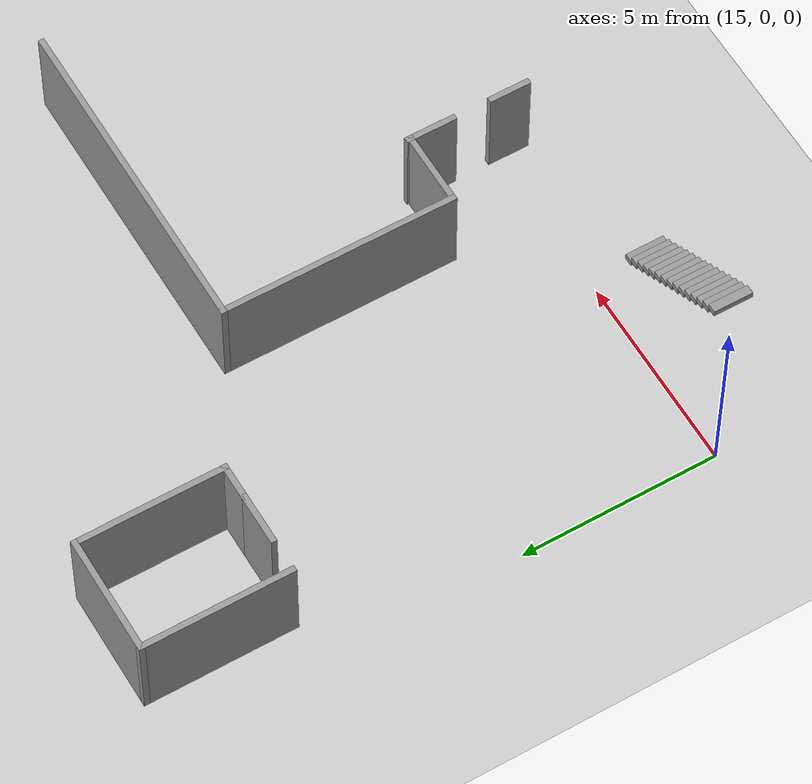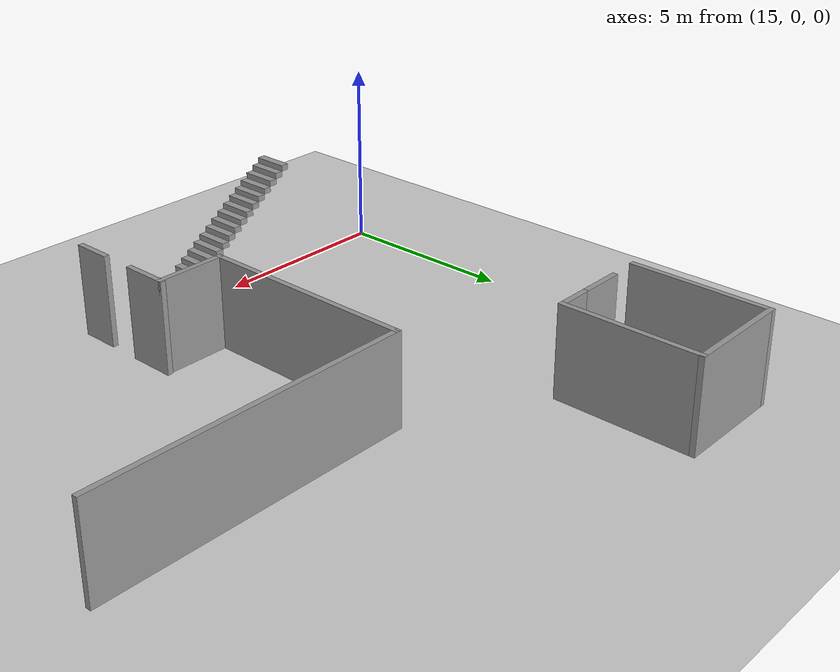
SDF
<sdf version="1.6">
 <world name="default">
  <model name="ground_plane">
   <static>1</static>
   <link name="link">
    <collision name="collision">
     <geometry><plane><normal>0 0 1</normal><size>100 100</size></plane></geometry>
     <surface><friction><ode><mu>100</mu><mu2>50</mu2></ode></friction></surface>
    </collision>
    <visual name="visual">
     <cast_shadows>0</cast_shadows>
     <geometry><plane><normal>0 0 1</normal><size>100 100</size></plane></geometry>
     <material>
      <script><uri>file://media/materials/scripts/gazebo.material</uri><name>Gazebo/Grey</name></script>
     </material>
    </visual>
   </link>
  </model>
  <model name="313-325_3">
   <link name="Wall_16">
    <pose>-1.44915 7.1e-05 0 0 0 -1.57088</pose>
    <visual name="Wall_16_Visual">
     <pose>0 0 1.25 0 -0 0</pose>
     <geometry><box><size>3.81 0.15 2.5</size></box></geometry>
     <material>
      <script><uri>file://media/materials/scripts/gazebo.material</uri><name>Gazebo/Grey</name></script>
      <ambient>1 1 1 1</ambient>
      <shader type="pixel"/>
     </material>
     <meta><layer>0</layer></meta>
    </visual>
    <collision name="Wall_16_Collision">
     <pose>0 0 1.25 0 -0 0</pose>
     <geometry><box><size>3.81 0.15 2.5</size></box></geometry>
     <surface>
      <friction>
       <ode><mu>1</mu><mu2>1</mu2><fdir1>0 0 0</fdir1><slip1>0</slip1><slip2>0</slip2></ode>
       <torsional>
        <coefficient>1</coefficient>
        <patch_radius>0</patch_radius>
        <surface_radius>0</surface_radius>
        <use_patch_radius>1</use_patch_radius>
        <ode><slip>0</slip></ode>
       </torsional>
      </friction>
      <bounce><restitution_coefficient>0</restitution_coefficient><threshold>1e+06</threshold></bounce>
      <contact>
       <collide_without_contact>0</collide_without_contact>
       <collide_without_contact_bitmask>1</collide_without_contact_bitmask>
       <collide_bitmask>1</collide_bitmask>
       <ode>
        <soft_cfm>0</soft_cfm>
        <soft_erp>0.2</soft_erp>
        <kp>1e+13</kp>
        <kd>1</kd>
        <max_vel>0.01</max_vel>
        <min_depth>0</min_depth>
       </ode>
       <bullet>
        <split_impulse>1</split_impulse>
        <split_impulse_penetration_threshold>-0.01</split_impulse_penetration_threshold>
        <soft_cfm>0</soft_cfm>
        <soft_erp>0.2</soft_erp>
        <kp>1e+13</kp>
        <kd>1</kd>
       </bullet>
      </contact>
     </surface>
    </collision>
   </link>
   <link name="Wall_18">
    <pose>1.449 -6.1e-05 0 0 -0 1.5708</pose>
    <visual name="Wall_18_Visual">
     <pose>0 0 1.25 0 -0 0</pose>
     <geometry><box><size>3.80974 0.15 2.5</size></box></geometry>
     <material>
      <script><uri>file://media/materials/scripts/gazebo.material</uri><name>Gazebo/Grey</name></script>
      <ambient>1 1 1 1</ambient>
      <shader type="pixel"/>
     </material>
     <meta><layer>0</layer></meta>
    </visual>
    <collision name="Wall_18_Collision">
     <pose>0 0 1.25 0 -0 0</pose>
     <geometry><box><size>3.80974 0.15 2.5</size></box></geometry>
     <surface>
      <friction>
       <ode><mu>1</mu><mu2>1</mu2><fdir1>0 0 0</fdir1><slip1>0</slip1><slip2>0</slip2></ode>
       <torsional>
        <coefficient>1</coefficient>
        <patch_radius>0</patch_radius>
        <surface_radius>0</surface_radius>
        <use_patch_radius>1</use_patch_radius>
        <ode><slip>0</slip></ode>
       </torsional>
      </friction>
      <bounce><restitution_coefficient>0</restitution_coefficient><threshold>1e+06</threshold></bounce>
      <contact>
       <collide_without_contact>0</collide_without_contact>
       <collide_without_contact_bitmask>1</collide_without_contact_bitmask>
       <collide_bitmask>1</collide_bitmask>
       <ode>
        <soft_cfm>0</soft_cfm>
        <soft_erp>0.2</soft_erp>
        <kp>1e+13</kp>
        <kd>1</kd>
        <max_vel>0.01</max_vel>
        <min_depth>0</min_depth>
       </ode>
       <bullet>
        <split_impulse>1</split_impulse>
        <split_impulse_penetration_threshold>-0.01</split_impulse_penetration_threshold>
        <soft_cfm>0</soft_cfm>
        <soft_erp>0.2</soft_erp>
        <kp>1e+13</kp>
        <kd>1</kd>
       </bullet>
      </contact>
     </surface>
    </collision>
   </link>
   <link name="Wall_19">
    <pose>2e-06 1.82994 0 0 -0 3.14159</pose>
    <visual name="Wall_19_Visual">
     <pose>0 0 1.25 0 -0 0</pose>
     <geometry><box><size>3.04862 0.15 2.5</size></box></geometry>
     <material>
      <script><uri>file://media/materials/scripts/gazebo.material</uri><name>Gazebo/Grey</name></script>
      <ambient>1 1 1 1</ambient>
      <shader type="pixel"/>
     </material>
     <meta><layer>0</layer></meta>
    </visual>
    <collision name="Wall_19_Collision">
     <pose>0 0 1.25 0 -0 0</pose>
     <geometry><box><size>3.04862 0.15 2.5</size></box></geometry>
     <surface>
      <friction>
       <ode><mu>1</mu><mu2>1</mu2><fdir1>0 0 0</fdir1><slip1>0</slip1><slip2>0</slip2></ode>
       <torsional>
        <coefficient>1</coefficient>
        <patch_radius>0</patch_radius>
        <surface_radius>0</surface_radius>
        <use_patch_radius>1</use_patch_radius>
        <ode><slip>0</slip></ode>
       </torsional>
      </friction>
      <bounce><restitution_coefficient>0</restitution_coefficient><threshold>1e+06</threshold></bounce>
      <contact>
       <collide_without_contact>0</collide_without_contact>
       <collide_without_contact_bitmask>1</collide_without_contact_bitmask>
       <collide_bitmask>1</collide_bitmask>
       <ode>
        <soft_cfm>0</soft_cfm>
        <soft_erp>0.2</soft_erp>
        <kp>1e+13</kp>
        <kd>1</kd>
        <max_vel>0.01</max_vel>
        <min_depth>0</min_depth>
       </ode>
       <bullet>
        <split_impulse>1</split_impulse>
        <split_impulse_penetration_threshold>-0.01</split_impulse_penetration_threshold>
        <soft_cfm>0</soft_cfm>
        <soft_erp>0.2</soft_erp>
        <kp>1e+13</kp>
        <kd>1</kd>
       </bullet>
      </contact>
     </surface>
    </collision>
   </link>
   <link name="Wall_22">
    <pose>-0.000153 -1.82993 0 0 0 -0.00022</pose>
    <visual name="Wall_22_Visual">
     <pose>0 0 1.25 0 -0 0</pose>
     <geometry><box><size>1.34831 0.15 2.5</size></box></geometry>
     <material>
      <script><uri>file://media/materials/scripts/gazebo.material</uri><name>Gazebo/Grey</name></script>
      <ambient>1 1 1 1</ambient>
      <shader type="pixel"/>
     </material>
     <meta><layer>0</layer></meta>
    </visual>
    <collision name="Wall_22_Collision">
     <pose>0 0 1.25 0 -0 0</pose>
     <geometry><box><size>1.34831 0.15 2.5</size></box></geometry>
     <surface>
      <friction>
       <ode><mu>1</mu><mu2>1</mu2><fdir1>0 0 0</fdir1><slip1>0</slip1><slip2>0</slip2></ode>
       <torsional>
        <coefficient>1</coefficient>
        <patch_radius>0</patch_radius>
        <surface_radius>0</surface_radius>
        <use_patch_radius>1</use_patch_radius>
        <ode><slip>0</slip></ode>
       </torsional>
      </friction>
      <bounce><restitution_coefficient>0</restitution_coefficient><threshold>1e+06</threshold></bounce>
      <contact>
       <collide_without_contact>0</collide_without_contact>
       <collide_without_contact_bitmask>1</collide_without_contact_bitmask>
       <collide_bitmask>1</collide_bitmask>
       <ode>
        <soft_cfm>0</soft_cfm>
        <soft_erp>0.2</soft_erp>
        <kp>1e+13</kp>
        <kd>1</kd>
        <max_vel>0.01</max_vel>
        <min_depth>0</min_depth>
       </ode>
       <bullet>
        <split_impulse>1</split_impulse>
        <split_impulse_penetration_threshold>-0.01</split_impulse_penetration_threshold>
        <soft_cfm>0</soft_cfm>
        <soft_erp>0.2</soft_erp>
        <kp>1e+13</kp>
        <kd>1</kd>
       </bullet>
      </contact>
     </surface>
    </collision>
   </link>
   <link name="Wall_23">
    <pose>1.024 -1.83006 0 0 -0 0</pose>
    <visual name="Wall_23_Visual">
     <pose>0 0 1.25 0 -0 0</pose>
     <geometry><box><size>1 0.15 2.5</size></box></geometry>
     <material>
      <script><uri>file://media/materials/scripts/gazebo.material</uri><name>Gazebo/Grey</name></script>
      <ambient>1 1 1 1</ambient>
      <shader type="pixel"/>
     </material>
     <meta><layer>0</layer></meta>
    </visual>
    <collision name="Wall_23_Collision">
     <pose>0 0 1.25 0 -0 0</pose>
     <geometry><box><size>1 0.15 2.5</size></box></geometry>
     <surface>
      <friction>
       <ode><mu>1</mu><mu2>1</mu2><fdir1>0 0 0</fdir1><slip1>0</slip1><slip2>0</slip2></ode>
       <torsional>
        <coefficient>1</coefficient>
        <patch_radius>0</patch_radius>
        <surface_radius>0</surface_radius>
        <use_patch_radius>1</use_patch_radius>
        <ode><slip>0</slip></ode>
       </torsional>
      </friction>
      <bounce><restitution_coefficient>0</restitution_coefficient><threshold>1e+06</threshold></bounce>
      <contact>
       <collide_without_contact>0</collide_without_contact>
       <collide_without_contact_bitmask>1</collide_without_contact_bitmask>
       <collide_bitmask>1</collide_bitmask>
       <ode>
        <soft_cfm>0</soft_cfm>
        <soft_erp>0.2</soft_erp>
        <kp>1e+13</kp>
        <kd>1</kd>
        <max_vel>0.01</max_vel>
        <min_depth>0</min_depth>
       </ode>
       <bullet>
        <split_impulse>1</split_impulse>
        <split_impulse_penetration_threshold>-0.01</split_impulse_penetration_threshold>
        <soft_cfm>0</soft_cfm>
        <soft_erp>0.2</soft_erp>
        <kp>1e+13</kp>
        <kd>1</kd>
       </bullet>
      </contact>
     </surface>
    </collision>
   </link>
   <static>1</static>
   <pose>17.4622 11.9474 0 0 -0 0</pose>
  </model>
  <model name="413">
   <link name="Wall_12">
    <pose>0 3.95 0 0 -0 3.14159</pose>
    <visual name="Wall_12_Visual">
     <pose>0 0 1.25 0 -0 0</pose>
     <geometry><box><size>8.5 0.15 2.5</size></box></geometry>
     <material>
      <script><uri>file://media/materials/scripts/gazebo.material</uri><name>Gazebo/Grey</name></script>
      <ambient>1 1 1 1</ambient>
      <shader type="pixel"/>
     </material>
     <meta><layer>0</layer></meta>
    </visual>
    <collision name="Wall_12_Collision">
     <pose>0 0 1.25 0 -0 0</pose>
     <geometry><box><size>8.5 0.15 2.5</size></box></geometry>
     <surface>
      <friction>
       <ode><mu>1</mu><mu2>1</mu2><fdir1>0 0 0</fdir1><slip1>0</slip1><slip2>0</slip2></ode>
       <torsional>
        <coefficient>1</coefficient>
        <patch_radius>0</patch_radius>
        <surface_radius>0</surface_radius>
        <use_patch_radius>1</use_patch_radius>
        <ode><slip>0</slip></ode>
       </torsional>
      </friction>
      <bounce><restitution_coefficient>0</restitution_coefficient><threshold>1e+06</threshold></bounce>
      <contact>
       <collide_without_contact>0</collide_without_contact>
       <collide_without_contact_bitmask>1</collide_without_contact_bitmask>
       <collide_bitmask>1</collide_bitmask>
       <ode>
        <soft_cfm>0</soft_cfm>
        <soft_erp>0.2</soft_erp>
        <kp>1e+13</kp>
        <kd>1</kd>
        <max_vel>0.01</max_vel>
        <min_depth>0</min_depth>
       </ode>
       <bullet>
        <split_impulse>1</split_impulse>
        <split_impulse_penetration_threshold>-0.01</split_impulse_penetration_threshold>
        <soft_cfm>0</soft_cfm>
        <soft_erp>0.2</soft_erp>
        <kp>1e+13</kp>
        <kd>1</kd>
       </bullet>
      </contact>
     </surface>
    </collision>
   </link>
   <link name="Wall_13">
    <pose>-4.175 1.025 0 0 0 -1.5708</pose>
    <visual name="Wall_13_Visual">
     <pose>0 0 1.25 0 -0 0</pose>
     <geometry><box><size>6 0.15 2.5</size></box></geometry>
     <material>
      <script><uri>file://media/materials/scripts/gazebo.material</uri><name>Gazebo/Grey</name></script>
      <ambient>1 1 1 1</ambient>
      <shader type="pixel"/>
     </material>
     <meta><layer>0</layer></meta>
    </visual>
    <collision name="Wall_13_Collision">
     <pose>0 0 1.25 0 -0 0</pose>
     <geometry><box><size>6 0.15 2.5</size></box></geometry>
     <surface>
      <friction>
       <ode><mu>1</mu><mu2>1</mu2><fdir1>0 0 0</fdir1><slip1>0</slip1><slip2>0</slip2></ode>
       <torsional>
        <coefficient>1</coefficient>
        <patch_radius>0</patch_radius>
        <surface_radius>0</surface_radius>
        <use_patch_radius>1</use_patch_radius>
        <ode><slip>0</slip></ode>
       </torsional>
      </friction>
      <bounce><restitution_coefficient>0</restitution_coefficient><threshold>1e+06</threshold></bounce>
      <contact>
       <collide_without_contact>0</collide_without_contact>
       <collide_without_contact_bitmask>1</collide_without_contact_bitmask>
       <collide_bitmask>1</collide_bitmask>
       <ode>
        <soft_cfm>0</soft_cfm>
        <soft_erp>0.2</soft_erp>
        <kp>1e+13</kp>
        <kd>1</kd>
        <max_vel>0.01</max_vel>
        <min_depth>0</min_depth>
       </ode>
       <bullet>
        <split_impulse>1</split_impulse>
        <split_impulse_penetration_threshold>-0.01</split_impulse_penetration_threshold>
        <soft_cfm>0</soft_cfm>
        <soft_erp>0.2</soft_erp>
        <kp>1e+13</kp>
        <kd>1</kd>
       </bullet>
      </contact>
     </surface>
    </collision>
   </link>
   <link name="Wall_14">
    <pose>-3.25 -1.9 0 0 -0 0</pose>
    <visual name="Wall_14_Visual">
     <pose>0 0 1.25 0 -0 0</pose>
     <geometry><box><size>2 0.15 2.5</size></box></geometry>
     <material>
      <script><uri>file://media/materials/scripts/gazebo.material</uri><name>Gazebo/Grey</name></script>
      <ambient>1 1 1 1</ambient>
      <shader type="pixel"/>
     </material>
     <meta><layer>0</layer></meta>
    </visual>
    <collision name="Wall_14_Collision">
     <pose>0 0 1.25 0 -0 0</pose>
     <geometry><box><size>2 0.15 2.5</size></box></geometry>
     <surface>
      <friction>
       <ode><mu>1</mu><mu2>1</mu2><fdir1>0 0 0</fdir1><slip1>0</slip1><slip2>0</slip2></ode>
       <torsional>
        <coefficient>1</coefficient>
        <patch_radius>0</patch_radius>
        <surface_radius>0</surface_radius>
        <use_patch_radius>1</use_patch_radius>
        <ode><slip>0</slip></ode>
       </torsional>
      </friction>
      <bounce><restitution_coefficient>0</restitution_coefficient><threshold>1e+06</threshold></bounce>
      <contact>
       <collide_without_contact>0</collide_without_contact>
       <collide_without_contact_bitmask>1</collide_without_contact_bitmask>
       <collide_bitmask>1</collide_bitmask>
       <ode>
        <soft_cfm>0</soft_cfm>
        <soft_erp>0.2</soft_erp>
        <kp>1e+13</kp>
        <kd>1</kd>
        <max_vel>0.01</max_vel>
        <min_depth>0</min_depth>
       </ode>
       <bullet>
        <split_impulse>1</split_impulse>
        <split_impulse_penetration_threshold>-0.01</split_impulse_penetration_threshold>
        <soft_cfm>0</soft_cfm>
        <soft_erp>0.2</soft_erp>
        <kp>1e+13</kp>
        <kd>1</kd>
       </bullet>
      </contact>
     </surface>
    </collision>
   </link>
   <link name="Wall_15">
    <pose>-2.325 -2.42917 0 0 0 -1.5708</pose>
    <inertial>
     <inertia><ixx>0</ixx><ixy>0</ixy><ixz>0</ixz><iyy>0</iyy><iyz>0</iyz><izz>0</izz></inertia>
     <mass>0</mass>
    </inertial>
    <visual name="Wall_15_Visual">
     <pose>0 0 1.25 0 -0 0</pose>
     <geometry><box><size>1.29379 0.15 2.5</size></box></geometry>
     <material>
      <script><uri>file://media/materials/scripts/gazebo.material</uri><name>Gazebo/Grey</name></script>
      <ambient>1 1 1 1</ambient>
      <shader type="pixel"/>
     </material>
     <meta><layer>0</layer></meta>
    </visual>
    <collision name="Wall_15_Collision">
     <pose>0 0 1.25 0 -0 0</pose>
     <geometry><box><size>1.29379 0.15 2.5</size></box></geometry>
     <surface>
      <friction>
       <ode><mu>1</mu><mu2>1</mu2><fdir1>0 0 0</fdir1><slip1>0</slip1><slip2>0</slip2></ode>
       <torsional>
        <coefficient>1</coefficient>
        <patch_radius>0</patch_radius>
        <surface_radius>0</surface_radius>
        <use_patch_radius>1</use_patch_radius>
        <ode><slip>0</slip></ode>
       </torsional>
      </friction>
      <bounce><restitution_coefficient>0</restitution_coefficient><threshold>1e+06</threshold></bounce>
      <contact>
       <collide_without_contact>0</collide_without_contact>
       <collide_without_contact_bitmask>1</collide_without_contact_bitmask>
       <collide_bitmask>1</collide_bitmask>
       <ode>
        <soft_cfm>0</soft_cfm>
        <soft_erp>0.2</soft_erp>
        <kp>1e+13</kp>
        <kd>1</kd>
        <max_vel>0.01</max_vel>
        <min_depth>0</min_depth>
       </ode>
       <bullet>
        <split_impulse>1</split_impulse>
        <split_impulse_penetration_threshold>-0.01</split_impulse_penetration_threshold>
        <soft_cfm>0</soft_cfm>
        <soft_erp>0.2</soft_erp>
        <kp>1e+13</kp>
        <kd>1</kd>
       </bullet>
      </contact>
     </surface>
    </collision>
   </link>
   <link name="Wall_17">
    <pose>-2.325 -4.48015 0 0 0 -1.5708</pose>
    <inertial>
     <inertia><ixx>0</ixx><ixy>0</ixy><ixz>0</ixz><iyy>0</iyy><iyz>0</iyz><izz>0</izz></inertia>
     <mass>0</mass>
    </inertial>
    <visual name="Wall_17_Visual">
     <pose>0 0 1.25 0 -0 0</pose>
     <geometry><box><size>1.06479 0.15 2.5</size></box></geometry>
     <material>
      <script><uri>file://media/materials/scripts/gazebo.material</uri><name>Gazebo/Grey</name></script>
      <ambient>1 1 1 1</ambient>
      <shader type="pixel"/>
     </material>
     <meta><layer>0</layer></meta>
    </visual>
    <collision name="Wall_17_Collision">
     <pose>0 0 1.25 0 -0 0</pose>
     <geometry><box><size>1.06479 0.15 2.5</size></box></geometry>
     <surface>
      <friction>
       <ode><mu>1</mu><mu2>1</mu2><fdir1>0 0 0</fdir1><slip1>0</slip1><slip2>0</slip2></ode>
       <torsional>
        <coefficient>1</coefficient>
        <patch_radius>0</patch_radius>
        <surface_radius>0</surface_radius>
        <use_patch_radius>1</use_patch_radius>
        <ode><slip>0</slip></ode>
       </torsional>
      </friction>
      <bounce><restitution_coefficient>0</restitution_coefficient><threshold>1e+06</threshold></bounce>
      <contact>
       <collide_without_contact>0</collide_without_contact>
       <collide_without_contact_bitmask>1</collide_without_contact_bitmask>
       <collide_bitmask>1</collide_bitmask>
       <ode>
        <soft_cfm>0</soft_cfm>
        <soft_erp>0.2</soft_erp>
        <kp>1e+13</kp>
        <kd>1</kd>
        <max_vel>0.01</max_vel>
        <min_depth>0</min_depth>
       </ode>
       <bullet>
        <split_impulse>1</split_impulse>
        <split_impulse_penetration_threshold>-0.01</split_impulse_penetration_threshold>
        <soft_cfm>0</soft_cfm>
        <soft_erp>0.2</soft_erp>
        <kp>1e+13</kp>
        <kd>1</kd>
       </bullet>
      </contact>
     </surface>
    </collision>
   </link>
   <static>1</static>
   <pose>26.5765 4.26049 0 0 -0 0</pose>
  </model>
  <model name="Staircase_2">
   <link name="Stairs_0">
    <visual name="Stairs_0_Visual_2">
     <pose>-1.16667 -0 0.416667 0 -0 1.5708</pose>
     <geometry><box><size>1 0.233333 0.166667</size></box></geometry>
     <material>
      <script><uri>file://media/materials/scripts/gazebo.material</uri><name>Gazebo/Grey</name></script>
      <ambient>1 1 1 1</ambient>
      <shader type="pixel"/>
     </material>
     <meta><layer>0</layer></meta>
    </visual>
    <visual name="Stairs_0_Visual_3">
     <pose>-0.933333 -0 0.583333 0 -0 1.5708</pose>
     <geometry><box><size>1 0.233333 0.166667</size></box></geometry>
     <material>
      <script><uri>file://media/materials/scripts/gazebo.material</uri><name>Gazebo/Grey</name></script>
      <ambient>1 1 1 1</ambient>
      <shader type="pixel"/>
     </material>
     <meta><layer>0</layer></meta>
    </visual>
    <visual name="Stairs_0_Visual_4">
     <pose>-0.7 0 0.75 0 -0 1.5708</pose>
     <geometry><box><size>1 0.233333 0.166667</size></box></geometry>
     <material>
      <script><uri>file://media/materials/scripts/gazebo.material</uri><name>Gazebo/Grey</name></script>
      <ambient>1 1 1 1</ambient>
      <shader type="pixel"/>
     </material>
     <meta><layer>0</layer></meta>
    </visual>
    <visual name="Stairs_0_Visual_5">
     <pose>-0.466667 0 0.916667 0 -0 1.5708</pose>
     <geometry><box><size>1 0.233333 0.166667</size></box></geometry>
     <material>
      <script><uri>file://media/materials/scripts/gazebo.material</uri><name>Gazebo/Grey</name></script>
      <ambient>1 1 1 1</ambient>
      <shader type="pixel"/>
     </material>
     <meta><layer>0</layer></meta>
    </visual>
    <visual name="Stairs_0_Visual_6">
     <pose>-0.233333 0 1.08333 0 -0 1.5708</pose>
     <geometry><box><size>1 0.233333 0.166667</size></box></geometry>
     <material>
      <script><uri>file://media/materials/scripts/gazebo.material</uri><name>Gazebo/Grey</name></script>
      <ambient>1 1 1 1</ambient>
      <shader type="pixel"/>
     </material>
     <meta><layer>0</layer></meta>
    </visual>
    <visual name="Stairs_0_Visual_7">
     <pose>0 0 1.25 0 -0 1.5708</pose>
     <geometry><box><size>1 0.233333 0.166667</size></box></geometry>
     <material>
      <script><uri>file://media/materials/scripts/gazebo.material</uri><name>Gazebo/Grey</name></script>
      <ambient>1 1 1 1</ambient>
      <shader type="pixel"/>
     </material>
     <meta><layer>0</layer></meta>
    </visual>
    <visual name="Stairs_0_Visual_8">
     <pose>0.233333 0 1.41667 0 -0 1.5708</pose>
     <geometry><box><size>1 0.233333 0.166667</size></box></geometry>
     <material>
      <script><uri>file://media/materials/scripts/gazebo.material</uri><name>Gazebo/Grey</name></script>
      <ambient>1 1 1 1</ambient>
      <shader type="pixel"/>
     </material>
     <meta><layer>0</layer></meta>
    </visual>
    <visual name="Stairs_0_Visual_9">
     <pose>0.466667 0 1.58333 0 -0 1.5708</pose>
     <geometry><box><size>1 0.233333 0.166667</size></box></geometry>
     <material>
      <script><uri>file://media/materials/scripts/gazebo.material</uri><name>Gazebo/Grey</name></script>
      <ambient>1 1 1 1</ambient>
      <shader type="pixel"/>
     </material>
     <meta><layer>0</layer></meta>
    </visual>
    <visual name="Stairs_0_Visual_10">
     <pose>0.7 0 1.75 0 -0 1.5708</pose>
     <geometry><box><size>1 0.233333 0.166667</size></box></geometry>
     <material>
      <script><uri>file://media/materials/scripts/gazebo.material</uri><name>Gazebo/Grey</name></script>
      <ambient>1 1 1 1</ambient>
      <shader type="pixel"/>
     </material>
     <meta><layer>0</layer></meta>
    </visual>
    <visual name="Stairs_0_Visual_11">
     <pose>0.933334 0 1.91667 0 -0 1.5708</pose>
     <geometry><box><size>1 0.233333 0.166667</size></box></geometry>
     <material>
      <script><uri>file://media/materials/scripts/gazebo.material</uri><name>Gazebo/Grey</name></script>
      <ambient>1 1 1 1</ambient>
      <shader type="pixel"/>
     </material>
     <meta><layer>0</layer></meta>
    </visual>
    <visual name="Stairs_0_Visual_12">
     <pose>1.16667 0 2.08333 0 -0 1.5708</pose>
     <geometry><box><size>1 0.233333 0.166667</size></box></geometry>
     <material>
      <script><uri>file://media/materials/scripts/gazebo.material</uri><name>Gazebo/Grey</name></script>
      <ambient>1 1 1 1</ambient>
      <shader type="pixel"/>
     </material>
     <meta><layer>0</layer></meta>
    </visual>
    <visual name="Stairs_0_Visual_13">
     <pose>1.4 0 2.25 0 -0 1.5708</pose>
     <geometry><box><size>1 0.233333 0.166667</size></box></geometry>
     <material>
      <script><uri>file://media/materials/scripts/gazebo.material</uri><name>Gazebo/Grey</name></script>
      <ambient>1 1 1 1</ambient>
      <shader type="pixel"/>
     </material>
     <meta><layer>0</layer></meta>
    </visual>
    <visual name="Stairs_0_Visual_14">
     <pose>1.63333 0 2.41667 0 -0 1.5708</pose>
     <geometry><box><size>1 0.233333 0.166667</size></box></geometry>
     <material>
      <script><uri>file://media/materials/scripts/gazebo.material</uri><name>Gazebo/Grey</name></script>
      <ambient>1 1 1 1</ambient>
      <shader type="pixel"/>
     </material>
     <meta><layer>0</layer></meta>
    </visual>
    <visual name="Stairs_0_Visual_0">
     <pose>-1.63333 -0 0.083333 0 -0 1.5708</pose>
     <geometry><box><size>1 0.233333 0.166667</size></box></geometry>
     <material>
      <script><uri>file://media/materials/scripts/gazebo.material</uri><name>Gazebo/Grey</name></script>
      <ambient>1 1 1 1</ambient>
      <shader type="pixel"/>
     </material>
     <meta><layer>0</layer></meta>
    </visual>
    <visual name="Stairs_0_Visual_1">
     <pose>-1.4 -0 0.25 0 -0 1.5708</pose>
     <geometry><box><size>1 0.233333 0.166667</size></box></geometry>
     <material>
      <script><uri>file://media/materials/scripts/gazebo.material</uri><name>Gazebo/Grey</name></script>
      <ambient>1 1 1 1</ambient>
      <shader type="pixel"/>
     </material>
     <meta><layer>0</layer></meta>
    </visual>
    <collision name="Stairs_0_Collision_0">
     <pose>-1.63333 0 0.083333 0 -0 1.5708</pose>
     <geometry><box><size>1 0.233333 0.166667</size></box></geometry>
     <surface>
      <friction>
       <ode><mu>1</mu><mu2>1</mu2><fdir1>0 0 0</fdir1><slip1>0</slip1><slip2>0</slip2></ode>
       <torsional>
        <coefficient>1</coefficient>
        <patch_radius>0</patch_radius>
        <surface_radius>0</surface_radius>
        <use_patch_radius>1</use_patch_radius>
        <ode><slip>0</slip></ode>
       </torsional>
      </friction>
      <bounce><restitution_coefficient>0</restitution_coefficient><threshold>1e+06</threshold></bounce>
      <contact>
       <collide_without_contact>0</collide_without_contact>
       <collide_without_contact_bitmask>1</collide_without_contact_bitmask>
       <collide_bitmask>1</collide_bitmask>
       <ode>
        <soft_cfm>0</soft_cfm>
        <soft_erp>0.2</soft_erp>
        <kp>1e+13</kp>
        <kd>1</kd>
        <max_vel>0.01</max_vel>
        <min_depth>0</min_depth>
       </ode>
       <bullet>
        <split_impulse>1</split_impulse>
        <split_impulse_penetration_threshold>-0.01</split_impulse_penetration_threshold>
        <soft_cfm>0</soft_cfm>
        <soft_erp>0.2</soft_erp>
        <kp>1e+13</kp>
        <kd>1</kd>
       </bullet>
      </contact>
     </surface>
    </collision>
    <collision name="Stairs_0_Collision_1">
     <pose>-1.4 0 0.25 0 -0 1.5708</pose>
     <geometry><box><size>1 0.233333 0.166667</size></box></geometry>
     <surface>
      <friction>
       <ode><mu>1</mu><mu2>1</mu2><fdir1>0 0 0</fdir1><slip1>0</slip1><slip2>0</slip2></ode>
       <torsional>
        <coefficient>1</coefficient>
        <patch_radius>0</patch_radius>
        <surface_radius>0</surface_radius>
        <use_patch_radius>1</use_patch_radius>
        <ode><slip>0</slip></ode>
       </torsional>
      </friction>
      <bounce><restitution_coefficient>0</restitution_coefficient><threshold>1e+06</threshold></bounce>
      <contact>
       <collide_without_contact>0</collide_without_contact>
       <collide_without_contact_bitmask>1</collide_without_contact_bitmask>
       <collide_bitmask>1</collide_bitmask>
       <ode>
        <soft_cfm>0</soft_cfm>
        <soft_erp>0.2</soft_erp>
        <kp>1e+13</kp>
        <kd>1</kd>
        <max_vel>0.01</max_vel>
        <min_depth>0</min_depth>
       </ode>
       <bullet>
        <split_impulse>1</split_impulse>
        <split_impulse_penetration_threshold>-0.01</split_impulse_penetration_threshold>
        <soft_cfm>0</soft_cfm>
        <soft_erp>0.2</soft_erp>
        <kp>1e+13</kp>
        <kd>1</kd>
       </bullet>
      </contact>
     </surface>
    </collision>
    <collision name="Stairs_0_Collision_2">
     <pose>-1.16667 0 0.416667 0 -0 1.5708</pose>
     <geometry><box><size>1 0.233333 0.166667</size></box></geometry>
     <surface>
      <friction>
       <ode><mu>1</mu><mu2>1</mu2><fdir1>0 0 0</fdir1><slip1>0</slip1><slip2>0</slip2></ode>
       <torsional>
        <coefficient>1</coefficient>
        <patch_radius>0</patch_radius>
        <surface_radius>0</surface_radius>
        <use_patch_radius>1</use_patch_radius>
        <ode><slip>0</slip></ode>
       </torsional>
      </friction>
      <bounce><restitution_coefficient>0</restitution_coefficient><threshold>1e+06</threshold></bounce>
      <contact>
       <collide_without_contact>0</collide_without_contact>
       <collide_without_contact_bitmask>1</collide_without_contact_bitmask>
       <collide_bitmask>1</collide_bitmask>
       <ode>
        <soft_cfm>0</soft_cfm>
        <soft_erp>0.2</soft_erp>
        <kp>1e+13</kp>
        <kd>1</kd>
        <max_vel>0.01</max_vel>
        <min_depth>0</min_depth>
       </ode>
       <bullet>
        <split_impulse>1</split_impulse>
        <split_impulse_penetration_threshold>-0.01</split_impulse_penetration_threshold>
        <soft_cfm>0</soft_cfm>
        <soft_erp>0.2</soft_erp>
        <kp>1e+13</kp>
        <kd>1</kd>
       </bullet>
      </contact>
     </surface>
    </collision>
    <collision name="Stairs_0_Collision_3">
     <pose>-0.933333 0 0.583333 0 -0 1.5708</pose>
     <geometry><box><size>1 0.233333 0.166667</size></box></geometry>
     <surface>
      <friction>
       <ode><mu>1</mu><mu2>1</mu2><fdir1>0 0 0</fdir1><slip1>0</slip1><slip2>0</slip2></ode>
       <torsional>
        <coefficient>1</coefficient>
        <patch_radius>0</patch_radius>
        <surface_radius>0</surface_radius>
        <use_patch_radius>1</use_patch_radius>
        <ode><slip>0</slip></ode>
       </torsional>
      </friction>
      <bounce><restitution_coefficient>0</restitution_coefficient><threshold>1e+06</threshold></bounce>
      <contact>
       <collide_without_contact>0</collide_without_contact>
       <collide_without_contact_bitmask>1</collide_without_contact_bitmask>
       <collide_bitmask>1</collide_bitmask>
       <ode>
        <soft_cfm>0</soft_cfm>
        <soft_erp>0.2</soft_erp>
        <kp>1e+13</kp>
        <kd>1</kd>
        <max_vel>0.01</max_vel>
        <min_depth>0</min_depth>
       </ode>
       <bullet>
        <split_impulse>1</split_impulse>
        <split_impulse_penetration_threshold>-0.01</split_impulse_penetration_threshold>
        <soft_cfm>0</soft_cfm>
        <soft_erp>0.2</soft_erp>
        <kp>1e+13</kp>
        <kd>1</kd>
       </bullet>
      </contact>
     </surface>
    </collision>
    <collision name="Stairs_0_Collision_4">
     <pose>-0.7 0 0.75 0 -0 1.5708</pose>
     <geometry><box><size>1 0.233333 0.166667</size></box></geometry>
     <surface>
      <friction>
       <ode><mu>1</mu><mu2>1</mu2><fdir1>0 0 0</fdir1><slip1>0</slip1><slip2>0</slip2></ode>
       <torsional>
        <coefficient>1</coefficient>
        <patch_radius>0</patch_radius>
        <surface_radius>0</surface_radius>
        <use_patch_radius>1</use_patch_radius>
        <ode><slip>0</slip></ode>
       </torsional>
      </friction>
      <bounce><restitution_coefficient>0</restitution_coefficient><threshold>1e+06</threshold></bounce>
      <contact>
       <collide_without_contact>0</collide_without_contact>
       <collide_without_contact_bitmask>1</collide_without_contact_bitmask>
       <collide_bitmask>1</collide_bitmask>
       <ode>
        <soft_cfm>0</soft_cfm>
        <soft_erp>0.2</soft_erp>
        <kp>1e+13</kp>
        <kd>1</kd>
        <max_vel>0.01</max_vel>
        <min_depth>0</min_depth>
       </ode>
       <bullet>
        <split_impulse>1</split_impulse>
        <split_impulse_penetration_threshold>-0.01</split_impulse_penetration_threshold>
        <soft_cfm>0</soft_cfm>
        <soft_erp>0.2</soft_erp>
        <kp>1e+13</kp>
        <kd>1</kd>
       </bullet>
      </contact>
     </surface>
    </collision>
    <collision name="Stairs_0_Collision_5">
     <pose>-0.466667 0 0.916667 0 -0 1.5708</pose>
     <geometry><box><size>1 0.233333 0.166667</size></box></geometry>
     <surface>
      <friction>
       <ode><mu>1</mu><mu2>1</mu2><fdir1>0 0 0</fdir1><slip1>0</slip1><slip2>0</slip2></ode>
       <torsional>
        <coefficient>1</coefficient>
        <patch_radius>0</patch_radius>
        <surface_radius>0</surface_radius>
        <use_patch_radius>1</use_patch_radius>
        <ode><slip>0</slip></ode>
       </torsional>
      </friction>
      <bounce><restitution_coefficient>0</restitution_coefficient><threshold>1e+06</threshold></bounce>
      <contact>
       <collide_without_contact>0</collide_without_contact>
       <collide_without_contact_bitmask>1</collide_without_contact_bitmask>
       <collide_bitmask>1</collide_bitmask>
       <ode>
        <soft_cfm>0</soft_cfm>
        <soft_erp>0.2</soft_erp>
        <kp>1e+13</kp>
        <kd>1</kd>
        <max_vel>0.01</max_vel>
        <min_depth>0</min_depth>
       </ode>
       <bullet>
        <split_impulse>1</split_impulse>
        <split_impulse_penetration_threshold>-0.01</split_impulse_penetration_threshold>
        <soft_cfm>0</soft_cfm>
        <soft_erp>0.2</soft_erp>
        <kp>1e+13</kp>
        <kd>1</kd>
       </bullet>
      </contact>
     </surface>
    </collision>
    <collision name="Stairs_0_Collision_6">
     <pose>-0.233333 0 1.08333 0 -0 1.5708</pose>
     <geometry><box><size>1 0.233333 0.166667</size></box></geometry>
     <surface>
      <friction>
       <ode><mu>1</mu><mu2>1</mu2><fdir1>0 0 0</fdir1><slip1>0</slip1><slip2>0</slip2></ode>
       <torsional>
        <coefficient>1</coefficient>
        <patch_radius>0</patch_radius>
        <surface_radius>0</surface_radius>
        <use_patch_radius>1</use_patch_radius>
        <ode><slip>0</slip></ode>
       </torsional>
      </friction>
      <bounce><restitution_coefficient>0</restitution_coefficient><threshold>1e+06</threshold></bounce>
      <contact>
       <collide_without_contact>0</collide_without_contact>
       <collide_without_contact_bitmask>1</collide_without_contact_bitmask>
       <collide_bitmask>1</collide_bitmask>
       <ode>
        <soft_cfm>0</soft_cfm>
        <soft_erp>0.2</soft_erp>
        <kp>1e+13</kp>
        <kd>1</kd>
        <max_vel>0.01</max_vel>
        <min_depth>0</min_depth>
       </ode>
       <bullet>
        <split_impulse>1</split_impulse>
        <split_impulse_penetration_threshold>-0.01</split_impulse_penetration_threshold>
        <soft_cfm>0</soft_cfm>
        <soft_erp>0.2</soft_erp>
        <kp>1e+13</kp>
        <kd>1</kd>
       </bullet>
      </contact>
     </surface>
    </collision>
    <collision name="Stairs_0_Collision_7">
     <pose>0 0 1.25 0 -0 1.5708</pose>
     <geometry><box><size>1 0.233333 0.166667</size></box></geometry>
     <surface>
      <friction>
       <ode><mu>1</mu><mu2>1</mu2><fdir1>0 0 0</fdir1><slip1>0</slip1><slip2>0</slip2></ode>
       <torsional>
        <coefficient>1</coefficient>
        <patch_radius>0</patch_radius>
        <surface_radius>0</surface_radius>
        <use_patch_radius>1</use_patch_radius>
        <ode><slip>0</slip></ode>
       </torsional>
      </friction>
      <bounce><restitution_coefficient>0</restitution_coefficient><threshold>1e+06</threshold></bounce>
      <contact>
       <collide_without_contact>0</collide_without_contact>
       <collide_without_contact_bitmask>1</collide_without_contact_bitmask>
       <collide_bitmask>1</collide_bitmask>
       <ode>
        <soft_cfm>0</soft_cfm>
        <soft_erp>0.2</soft_erp>
        <kp>1e+13</kp>
        <kd>1</kd>
        <max_vel>0.01</max_vel>
        <min_depth>0</min_depth>
       </ode>
       <bullet>
        <split_impulse>1</split_impulse>
        <split_impulse_penetration_threshold>-0.01</split_impulse_penetration_threshold>
        <soft_cfm>0</soft_cfm>
        <soft_erp>0.2</soft_erp>
        <kp>1e+13</kp>
        <kd>1</kd>
       </bullet>
      </contact>
     </surface>
    </collision>
    <collision name="Stairs_0_Collision_8">
     <pose>0.233333 0 1.41667 0 -0 1.5708</pose>
     <geometry><box><size>1 0.233333 0.166667</size></box></geometry>
     <surface>
      <friction>
       <ode><mu>1</mu><mu2>1</mu2><fdir1>0 0 0</fdir1><slip1>0</slip1><slip2>0</slip2></ode>
       <torsional>
        <coefficient>1</coefficient>
        <patch_radius>0</patch_radius>
        <surface_radius>0</surface_radius>
        <use_patch_radius>1</use_patch_radius>
        <ode><slip>0</slip></ode>
       </torsional>
      </friction>
      <bounce><restitution_coefficient>0</restitution_coefficient><threshold>1e+06</threshold></bounce>
      <contact>
       <collide_without_contact>0</collide_without_contact>
       <collide_without_contact_bitmask>1</collide_without_contact_bitmask>
       <collide_bitmask>1</collide_bitmask>
       <ode>
        <soft_cfm>0</soft_cfm>
        <soft_erp>0.2</soft_erp>
        <kp>1e+13</kp>
        <kd>1</kd>
        <max_vel>0.01</max_vel>
        <min_depth>0</min_depth>
       </ode>
       <bullet>
        <split_impulse>1</split_impulse>
        <split_impulse_penetration_threshold>-0.01</split_impulse_penetration_threshold>
        <soft_cfm>0</soft_cfm>
        <soft_erp>0.2</soft_erp>
        <kp>1e+13</kp>
        <kd>1</kd>
       </bullet>
      </contact>
     </surface>
    </collision>
    <collision name="Stairs_0_Collision_9">
     <pose>0.466667 0 1.58333 0 -0 1.5708</pose>
     <geometry><box><size>1 0.233333 0.166667</size></box></geometry>
     <surface>
      <friction>
       <ode><mu>1</mu><mu2>1</mu2><fdir1>0 0 0</fdir1><slip1>0</slip1><slip2>0</slip2></ode>
       <torsional>
        <coefficient>1</coefficient>
        <patch_radius>0</patch_radius>
        <surface_radius>0</surface_radius>
        <use_patch_radius>1</use_patch_radius>
        <ode><slip>0</slip></ode>
       </torsional>
      </friction>
      <bounce><restitution_coefficient>0</restitution_coefficient><threshold>1e+06</threshold></bounce>
      <contact>
       <collide_without_contact>0</collide_without_contact>
       <collide_without_contact_bitmask>1</collide_without_contact_bitmask>
       <collide_bitmask>1</collide_bitmask>
       <ode>
        <soft_cfm>0</soft_cfm>
        <soft_erp>0.2</soft_erp>
        <kp>1e+13</kp>
        <kd>1</kd>
        <max_vel>0.01</max_vel>
        <min_depth>0</min_depth>
       </ode>
       <bullet>
        <split_impulse>1</split_impulse>
        <split_impulse_penetration_threshold>-0.01</split_impulse_penetration_threshold>
        <soft_cfm>0</soft_cfm>
        <soft_erp>0.2</soft_erp>
        <kp>1e+13</kp>
        <kd>1</kd>
       </bullet>
      </contact>
     </surface>
    </collision>
    <collision name="Stairs_0_Collision_10">
     <pose>0.7 0 1.75 0 -0 1.5708</pose>
     <geometry><box><size>1 0.233333 0.166667</size></box></geometry>
     <surface>
      <friction>
       <ode><mu>1</mu><mu2>1</mu2><fdir1>0 0 0</fdir1><slip1>0</slip1><slip2>0</slip2></ode>
       <torsional>
        <coefficient>1</coefficient>
        <patch_radius>0</patch_radius>
        <surface_radius>0</surface_radius>
        <use_patch_radius>1</use_patch_radius>
        <ode><slip>0</slip></ode>
       </torsional>
      </friction>
      <bounce><restitution_coefficient>0</restitution_coefficient><threshold>1e+06</threshold></bounce>
      <contact>
       <collide_without_contact>0</collide_without_contact>
       <collide_without_contact_bitmask>1</collide_without_contact_bitmask>
       <collide_bitmask>1</collide_bitmask>
       <ode>
        <soft_cfm>0</soft_cfm>
        <soft_erp>0.2</soft_erp>
        <kp>1e+13</kp>
        <kd>1</kd>
        <max_vel>0.01</max_vel>
        <min_depth>0</min_depth>
       </ode>
       <bullet>
        <split_impulse>1</split_impulse>
        <split_impulse_penetration_threshold>-0.01</split_impulse_penetration_threshold>
        <soft_cfm>0</soft_cfm>
        <soft_erp>0.2</soft_erp>
        <kp>1e+13</kp>
        <kd>1</kd>
       </bullet>
      </contact>
     </surface>
    </collision>
    <collision name="Stairs_0_Collision_11">
     <pose>0.933334 0 1.91667 0 -0 1.5708</pose>
     <geometry><box><size>1 0.233333 0.166667</size></box></geometry>
     <surface>
      <friction>
       <ode><mu>1</mu><mu2>1</mu2><fdir1>0 0 0</fdir1><slip1>0</slip1><slip2>0</slip2></ode>
       <torsional>
        <coefficient>1</coefficient>
        <patch_radius>0</patch_radius>
        <surface_radius>0</surface_radius>
        <use_patch_radius>1</use_patch_radius>
        <ode><slip>0</slip></ode>
       </torsional>
      </friction>
      <bounce><restitution_coefficient>0</restitution_coefficient><threshold>1e+06</threshold></bounce>
      <contact>
       <collide_without_contact>0</collide_without_contact>
       <collide_without_contact_bitmask>1</collide_without_contact_bitmask>
       <collide_bitmask>1</collide_bitmask>
       <ode>
        <soft_cfm>0</soft_cfm>
        <soft_erp>0.2</soft_erp>
        <kp>1e+13</kp>
        <kd>1</kd>
        <max_vel>0.01</max_vel>
        <min_depth>0</min_depth>
       </ode>
       <bullet>
        <split_impulse>1</split_impulse>
        <split_impulse_penetration_threshold>-0.01</split_impulse_penetration_threshold>
        <soft_cfm>0</soft_cfm>
        <soft_erp>0.2</soft_erp>
        <kp>1e+13</kp>
        <kd>1</kd>
       </bullet>
      </contact>
     </surface>
    </collision>
    <collision name="Stairs_0_Collision_12">
     <pose>1.16667 0 2.08333 0 -0 1.5708</pose>
     <geometry><box><size>1 0.233333 0.166667</size></box></geometry>
     <surface>
      <friction>
       <ode><mu>1</mu><mu2>1</mu2><fdir1>0 0 0</fdir1><slip1>0</slip1><slip2>0</slip2></ode>
       <torsional>
        <coefficient>1</coefficient>
        <patch_radius>0</patch_radius>
        <surface_radius>0</surface_radius>
        <use_patch_radius>1</use_patch_radius>
        <ode><slip>0</slip></ode>
       </torsional>
      </friction>
      <bounce><restitution_coefficient>0</restitution_coefficient><threshold>1e+06</threshold></bounce>
      <contact>
       <collide_without_contact>0</collide_without_contact>
       <collide_without_contact_bitmask>1</collide_without_contact_bitmask>
       <collide_bitmask>1</collide_bitmask>
       <ode>
        <soft_cfm>0</soft_cfm>
        <soft_erp>0.2</soft_erp>
        <kp>1e+13</kp>
        <kd>1</kd>
        <max_vel>0.01</max_vel>
        <min_depth>0</min_depth>
       </ode>
       <bullet>
        <split_impulse>1</split_impulse>
        <split_impulse_penetration_threshold>-0.01</split_impulse_penetration_threshold>
        <soft_cfm>0</soft_cfm>
        <soft_erp>0.2</soft_erp>
        <kp>1e+13</kp>
        <kd>1</kd>
       </bullet>
      </contact>
     </surface>
    </collision>
    <collision name="Stairs_0_Collision_13">
     <pose>1.4 0 2.25 0 -0 1.5708</pose>
     <geometry><box><size>1 0.233333 0.166667</size></box></geometry>
     <surface>
      <friction>
       <ode><mu>1</mu><mu2>1</mu2><fdir1>0 0 0</fdir1><slip1>0</slip1><slip2>0</slip2></ode>
       <torsional>
        <coefficient>1</coefficient>
        <patch_radius>0</patch_radius>
        <surface_radius>0</surface_radius>
        <use_patch_radius>1</use_patch_radius>
        <ode><slip>0</slip></ode>
       </torsional>
      </friction>
      <bounce><restitution_coefficient>0</restitution_coefficient><threshold>1e+06</threshold></bounce>
      <contact>
       <collide_without_contact>0</collide_without_contact>
       <collide_without_contact_bitmask>1</collide_without_contact_bitmask>
       <collide_bitmask>1</collide_bitmask>
       <ode>
        <soft_cfm>0</soft_cfm>
        <soft_erp>0.2</soft_erp>
        <kp>1e+13</kp>
        <kd>1</kd>
        <max_vel>0.01</max_vel>
        <min_depth>0</min_depth>
       </ode>
       <bullet>
        <split_impulse>1</split_impulse>
        <split_impulse_penetration_threshold>-0.01</split_impulse_penetration_threshold>
        <soft_cfm>0</soft_cfm>
        <soft_erp>0.2</soft_erp>
        <kp>1e+13</kp>
        <kd>1</kd>
       </bullet>
      </contact>
     </surface>
    </collision>
    <collision name="Stairs_0_Collision_14">
     <pose>1.63333 0 2.41667 0 -0 1.5708</pose>
     <geometry><box><size>1 0.233333 0.166667</size></box></geometry>
     <surface>
      <friction>
       <ode><mu>1</mu><mu2>1</mu2><fdir1>0 0 0</fdir1><slip1>0</slip1><slip2>0</slip2></ode>
       <torsional>
        <coefficient>1</coefficient>
        <patch_radius>0</patch_radius>
        <surface_radius>0</surface_radius>
        <use_patch_radius>1</use_patch_radius>
        <ode><slip>0</slip></ode>
       </torsional>
      </friction>
      <bounce><restitution_coefficient>0</restitution_coefficient><threshold>1e+06</threshold></bounce>
      <contact>
       <collide_without_contact>0</collide_without_contact>
       <collide_without_contact_bitmask>1</collide_without_contact_bitmask>
       <collide_bitmask>1</collide_bitmask>
       <ode>
        <soft_cfm>0</soft_cfm>
        <soft_erp>0.2</soft_erp>
        <kp>1e+13</kp>
        <kd>1</kd>
        <max_vel>0.01</max_vel>
        <min_depth>0</min_depth>
       </ode>
       <bullet>
        <split_impulse>1</split_impulse>
        <split_impulse_penetration_threshold>-0.01</split_impulse_penetration_threshold>
        <soft_cfm>0</soft_cfm>
        <soft_erp>0.2</soft_erp>
        <kp>1e+13</kp>
        <kd>1</kd>
       </bullet>
      </contact>
     </surface>
    </collision>
   </link>
   <static>1</static>
   <pose>18.6695 -1.53292 0 0 -0 3.13661</pose>
  </model>
 </world>
</sdf>
